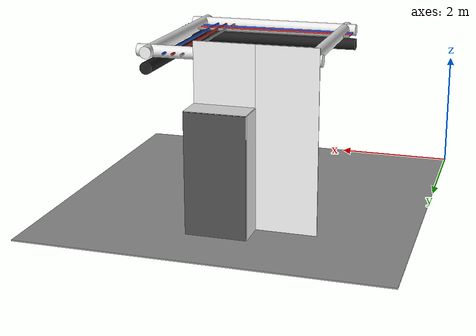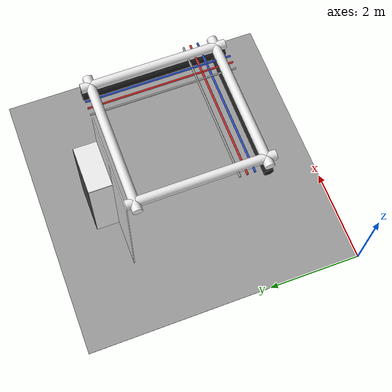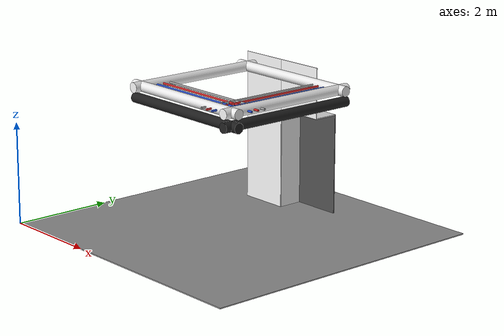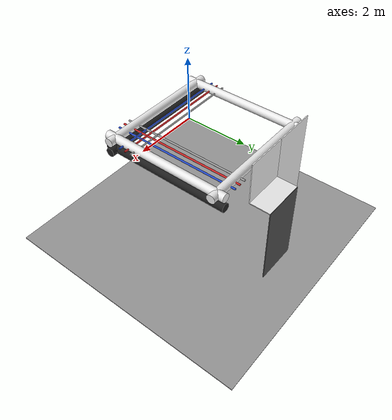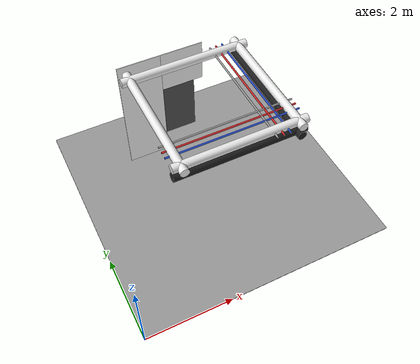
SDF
<sdf version="1.6">
 <world name="default">
  <model name="white_pipe_left_1_1_0_2">
   <static>1</static>
   <pose>3.0 3.0 2.76 0.0 0.0 -1.57</pose>
   <link name="link_0">
    <visual name="visual">
     <pose>-1.3 0 0 1.57 0 0</pose>
     <geometry><cylinder><radius>0.1</radius><length>3.0</length></cylinder></geometry>
     <material>
      <script><uri>file://media/materials/scripts/gazebo.material</uri><name>Gazebo/White</name></script>
     </material>
    </visual>
    <collision name="collision">
     <pose>-1.3 0 0 1.57 0 0</pose>
     <geometry><cylinder><radius>0.1</radius><length>3.0</length></cylinder></geometry>
    </collision>
   </link>
  </model>
  <model name="white_pipe_right_1_1_0_2">
   <static>1</static>
   <pose>3.0 3.0 2.76 0.0 0.0 -1.57</pose>
   <link name="link_0">
    <visual name="visual">
     <pose>1.3 0 0 1.57 0 0</pose>
     <geometry><cylinder><radius>0.1</radius><length>3.0</length></cylinder></geometry>
     <material>
      <script><uri>file://media/materials/scripts/gazebo.material</uri><name>Gazebo/White</name></script>
     </material>
    </visual>
    <collision name="collision">
     <pose>1.3 0 0 1.57 0 0</pose>
     <geometry><cylinder><radius>0.1</radius><length>3.0</length></cylinder></geometry>
    </collision>
   </link>
  </model>
  <model name="black_pipe_right_1_1_0_2">
   <static>1</static>
   <pose>3.0 3.0 2.76 0.0 0.0 -1.57</pose>
   <link name="link_0">
    <visual name="visual">
     <pose>1.3 0 -0.25 1.57 0 0</pose>
     <geometry><cylinder><radius>0.1</radius><length>3.0</length></cylinder></geometry>
     <material>
      <script><uri>file://media/materials/scripts/gazebo.material</uri><name>Gazebo/Black</name></script>
     </material>
    </visual>
    <collision name="collision">
     <pose>1.3 0 -0.25 1.57 0 0</pose>
     <geometry><cylinder><radius>0.1</radius><length>3.0</length></cylinder></geometry>
    </collision>
   </link>
  </model>
  <model name="grey_pipe_right_1_1_0_2">
   <static>1</static>
   <pose>3.0 3.0 2.76 0.0 0.0 -1.57</pose>
   <link name="link_0">
    <visual name="visual">
     <pose>0.7 0 0 1.57 0 0</pose>
     <geometry><cylinder><radius>0.02</radius><length>3.0</length></cylinder></geometry>
     <material>
      <script><uri>file://media/materials/scripts/gazebo.material</uri><name>Gazebo/Grey</name></script>
     </material>
    </visual>
    <collision name="collision">
     <pose>0.7 0 0 1.57 0 0</pose>
     <geometry><cylinder><radius>0.02</radius><length>3.0</length></cylinder></geometry>
    </collision>
   </link>
  </model>
  <model name="red_pipe_right_1_1_0_2">
   <static>1</static>
   <pose>3.0 3.0 2.76 0.0 0.0 -1.57</pose>
   <link name="link_0">
    <visual name="visual">
     <pose>0.85 0 0 1.57 0 0</pose>
     <geometry><cylinder><radius>0.02</radius><length>3.0</length></cylinder></geometry>
     <material>
      <script><uri>file://media/materials/scripts/gazebo.material</uri><name>Gazebo/Red</name></script>
     </material>
    </visual>
    <collision name="collision">
     <pose>0.85 0 0 1.57 0 0</pose>
     <geometry><cylinder><radius>0.02</radius><length>3.0</length></cylinder></geometry>
    </collision>
   </link>
  </model>
  <model name="blue_pipe_right_1_1_0_2">
   <static>1</static>
   <pose>3.0 3.0 2.76 0.0 0.0 -1.57</pose>
   <link name="link_0">
    <visual name="visual">
     <pose>1 0 0 1.57 0 0</pose>
     <geometry><cylinder><radius>0.02</radius><length>3.0</length></cylinder></geometry>
     <material>
      <script><uri>file://media/materials/scripts/gazebo.material</uri><name>Gazebo/Blue</name></script>
     </material>
    </visual>
    <collision name="collision">
     <pose>1 0 0 1.57 0 0</pose>
     <geometry><cylinder><radius>0.02</radius><length>3.0</length></cylinder></geometry>
    </collision>
   </link>
  </model>
  <model name="white_pipe_left_1_1_1_0_2">
   <static>1</static>
   <pose>3.0 3.0 2.76 0.0 0.0 0.0</pose>
   <link name="link_0">
    <visual name="visual">
     <pose>-1.3 0 0 1.57 0 0</pose>
     <geometry><cylinder><radius>0.1</radius><length>3.0</length></cylinder></geometry>
     <material>
      <script><uri>file://media/materials/scripts/gazebo.material</uri><name>Gazebo/White</name></script>
     </material>
    </visual>
    <collision name="collision">
     <pose>-1.3 0 0 1.57 0 0</pose>
     <geometry><cylinder><radius>0.1</radius><length>3.0</length></cylinder></geometry>
    </collision>
   </link>
  </model>
  <model name="white_pipe_right_1_1_1_0_2">
   <static>1</static>
   <pose>3.0 3.0 2.76 0.0 0.0 0.0</pose>
   <link name="link_0">
    <visual name="visual">
     <pose>1.3 0 0 1.57 0 0</pose>
     <geometry><cylinder><radius>0.1</radius><length>3.0</length></cylinder></geometry>
     <material>
      <script><uri>file://media/materials/scripts/gazebo.material</uri><name>Gazebo/White</name></script>
     </material>
    </visual>
    <collision name="collision">
     <pose>1.3 0 0 1.57 0 0</pose>
     <geometry><cylinder><radius>0.1</radius><length>3.0</length></cylinder></geometry>
    </collision>
   </link>
  </model>
  <model name="black_pipe_right_1_1_1_0_2">
   <static>1</static>
   <pose>3.0 3.0 2.76 0.0 0.0 0.0</pose>
   <link name="link_0">
    <visual name="visual">
     <pose>1.3 0 -0.25 1.57 0 0</pose>
     <geometry><cylinder><radius>0.1</radius><length>3.0</length></cylinder></geometry>
     <material>
      <script><uri>file://media/materials/scripts/gazebo.material</uri><name>Gazebo/Black</name></script>
     </material>
    </visual>
    <collision name="collision">
     <pose>1.3 0 -0.25 1.57 0 0</pose>
     <geometry><cylinder><radius>0.1</radius><length>3.0</length></cylinder></geometry>
    </collision>
   </link>
  </model>
  <model name="grey_pipe_right_1_1_1_0_2">
   <static>1</static>
   <pose>3.0 3.0 2.76 0.0 0.0 0.0</pose>
   <link name="link_0">
    <visual name="visual">
     <pose>0.7 0 0 1.57 0 0</pose>
     <geometry><cylinder><radius>0.02</radius><length>3.0</length></cylinder></geometry>
     <material>
      <script><uri>file://media/materials/scripts/gazebo.material</uri><name>Gazebo/Grey</name></script>
     </material>
    </visual>
    <collision name="collision">
     <pose>0.7 0 0 1.57 0 0</pose>
     <geometry><cylinder><radius>0.02</radius><length>3.0</length></cylinder></geometry>
    </collision>
   </link>
  </model>
  <model name="red_pipe_right_1_1_1_0_2">
   <static>1</static>
   <pose>3.0 3.0 2.76 0.0 0.0 0.0</pose>
   <link name="link_0">
    <visual name="visual">
     <pose>0.85 0 0 1.57 0 0</pose>
     <geometry><cylinder><radius>0.02</radius><length>3.0</length></cylinder></geometry>
     <material>
      <script><uri>file://media/materials/scripts/gazebo.material</uri><name>Gazebo/Red</name></script>
     </material>
    </visual>
    <collision name="collision">
     <pose>0.85 0 0 1.57 0 0</pose>
     <geometry><cylinder><radius>0.02</radius><length>3.0</length></cylinder></geometry>
    </collision>
   </link>
  </model>
  <model name="blue_pipe_right_1_1_1_0_2">
   <static>1</static>
   <pose>3.0 3.0 2.76 0.0 0.0 0.0</pose>
   <link name="link_0">
    <visual name="visual">
     <pose>1 0 0 1.57 0 0</pose>
     <geometry><cylinder><radius>0.02</radius><length>3.0</length></cylinder></geometry>
     <material>
      <script><uri>file://media/materials/scripts/gazebo.material</uri><name>Gazebo/Blue</name></script>
     </material>
    </visual>
    <collision name="collision">
     <pose>1 0 0 1.57 0 0</pose>
     <geometry><cylinder><radius>0.02</radius><length>3.0</length></cylinder></geometry>
    </collision>
   </link>
  </model>
  <model name="wall_left_front_right_1_1_0_2">
   <static>1</static>
   <pose>2.0 4.5 1.5 0.0 0.0 0.0</pose>
   <link name="link">
    <collision name="collision"><geometry><box><size>1.0 0.02 3.0</size></box></geometry></collision>
    <visual name="visual">
     <material>
      <script><name>Gazebo/White</name><uri>file://media/materials/scripts/gazebo.material</uri></script>
     </material>
     <geometry><box><size>1.0 0.02 3.0</size></box></geometry>
    </visual>
   </link>
  </model>
  <model name="wall_left_front_up_1_1_0_2">
   <static>1</static>
   <pose>3.0 4.5 2.5 0.0 0.0 0.0</pose>
   <link name="link">
    <collision name="collision"><geometry><box><size>1.0 0.02 1.0</size></box></geometry></collision>
    <visual name="visual">
     <material>
      <script><name>Gazebo/White</name><uri>file://media/materials/scripts/gazebo.material</uri></script>
     </material>
     <geometry><box><size>1.0 0.02 1.0</size></box></geometry>
    </visual>
   </link>
  </model>
  <model name="wall_left_inside_back_1_1_0_2">
   <static>1</static>
   <pose>3.0 5.0 1.0 0.0 0.0 0.0</pose>
   <link name="link">
    <collision name="collision"><geometry><box><size>1 0.02 2</size></box></geometry></collision>
    <visual name="visual">
     <material>
      <script><name>Gazebo/DarkGrey</name><uri>file://media/materials/scripts/gazebo.material</uri></script>
     </material>
     <geometry><box><size>1 0.02 2</size></box></geometry>
    </visual>
   </link>
  </model>
  <model name="wall_left_inside_right_1_1_0_2">
   <static>1</static>
   <pose>2.5 4.75 1.0 0.0 0.0 -1.57</pose>
   <link name="link">
    <collision name="collision"><geometry><box><size>0.5 0.02 2</size></box></geometry></collision>
    <visual name="visual">
     <material>
      <script><name>Gazebo/White</name><uri>file://media/materials/scripts/gazebo.material</uri></script>
     </material>
     <geometry><box><size>0.5 0.02 2</size></box></geometry>
    </visual>
   </link>
  </model>
  <model name="wall_left_inside_top_1_1_0_2">
   <static>1</static>
   <pose>3.0 4.75 2.0 1.57 0.0 0.0</pose>
   <link name="link">
    <collision name="collision"><geometry><box><size>1 0.02 0.5</size></box></geometry></collision>
    <visual name="visual">
     <material>
      <script><name>Gazebo/White</name><uri>file://media/materials/scripts/gazebo.material</uri></script>
     </material>
     <geometry><box><size>1 0.02 0.5</size></box></geometry>
    </visual>
   </link>
  </model>
  <model name="wall_bottom_1_1_0_2">
   <static>1</static>
   <pose>3.0 3.0 0.0 0.0 0.0 -1.57</pose>
   <link name="link">
    <collision name="collision"><geometry><box><size>6.0 6.0 0.02</size></box></geometry></collision>
    <visual name="visual">
     <material>
      <script><name>Gazebo/Grey</name><uri>file://media/materials/scripts/gazebo.material</uri></script>
     </material>
     <geometry><box><size>6.0 6.0 0.02</size></box></geometry>
    </visual>
   </link>
  </model>
 </world>
</sdf>
